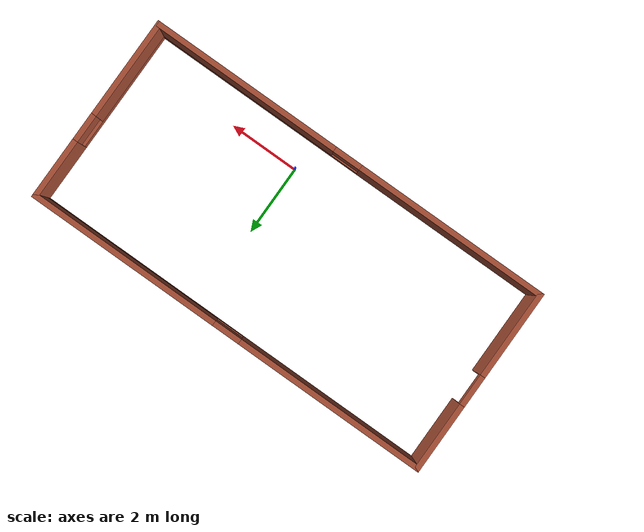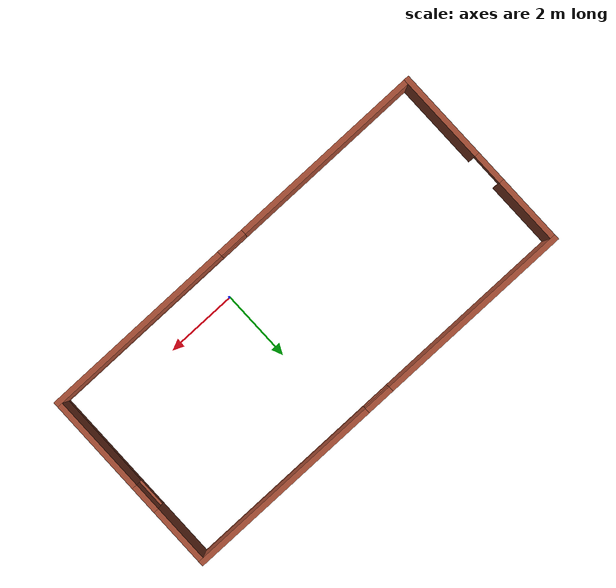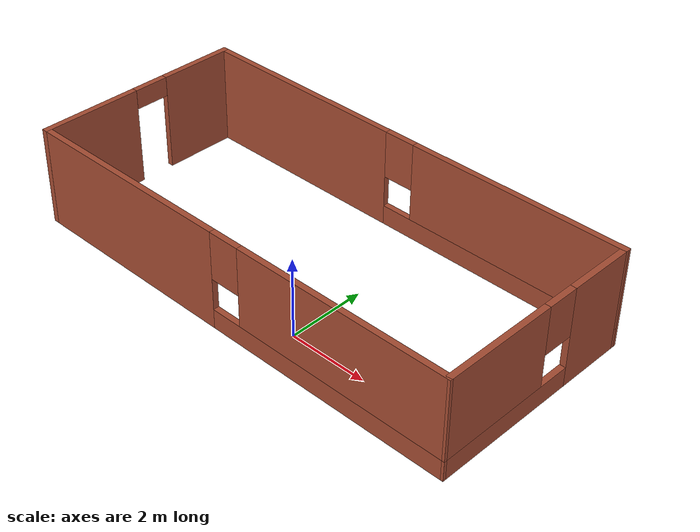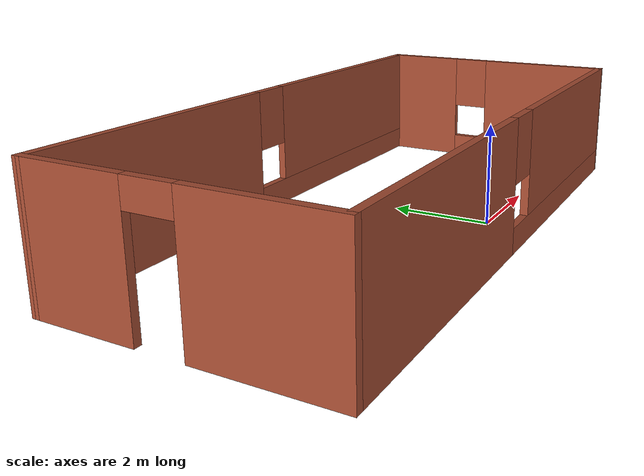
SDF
<?xml version='1.0'?>
<sdf version='1.6'>
  <model name='MyBuilding'>
    <pose frame=''>-1.01485 1.76487 0 0 -0 0</pose>
    <link name='Wall_1'>
      <pose frame=''>-0.000147 2.66513 0 0 -0 -0.001691</pose>
      <visual name='Wall_1_Visual_0'>
        <pose frame=''>-3.20401 0 1.25 0 -0 0</pose>
        <geometry>
          <box>
            <size>5.57199 0.15 2.5</size>
          </box>
        </geometry>
        <material>
          <script>
            <uri>file://media/materials/scripts/gazebo.material</uri>
            <name>Gazebo/Bricks</name>
          </script>
          <ambient>1 1 1 1</ambient>
        </material>
        <meta>
          <layer>0</layer>
        </meta>
      </visual>
      <collision name='Wall_1_Collision_0'>
        <geometry>
          <box>
            <size>5.57199 0.15 2.5</size>
          </box>
        </geometry>
        <pose frame=''>-3.20401 0 1.25 0 -0 0</pose>
      </collision>
      <visual name='Wall_1_Visual_1'>
        <pose frame=''>2.786 0 0.25 0 -0 0</pose>
        <geometry>
          <box>
            <size>6.40802 0.15 0.5</size>
          </box>
        </geometry>
        <material>
          <script>
            <uri>file://media/materials/scripts/gazebo.material</uri>
            <name>Gazebo/Bricks</name>
          </script>
          <ambient>1 1 1 1</ambient>
        </material>
        <meta>
          <layer>0</layer>
        </meta>
      </visual>
      <collision name='Wall_1_Collision_1'>
        <geometry>
          <box>
            <size>6.40802 0.15 0.5</size>
          </box>
        </geometry>
        <pose frame=''>2.786 0 0.25 0 -0 0</pose>
      </collision>
      <visual name='Wall_1_Visual_2'>
        <pose frame=''>3.186 0 1.5 0 -0 0</pose>
        <geometry>
          <box>
            <size>5.60802 0.15 2</size>
          </box>
        </geometry>
        <material>
          <script>
            <uri>file://media/materials/scripts/gazebo.material</uri>
            <name>Gazebo/Bricks</name>
          </script>
          <ambient>1 1 1 1</ambient>
        </material>
        <meta>
          <layer>0</layer>
        </meta>
      </visual>
      <collision name='Wall_1_Collision_2'>
        <geometry>
          <box>
            <size>5.60802 0.15 2</size>
          </box>
        </geometry>
        <pose frame=''>3.186 0 1.5 0 -0 0</pose>
      </collision>
      <visual name='Wall_1_Visual_3'>
        <pose frame=''>-0.018015 0 1.9 0 -0 0</pose>
        <geometry>
          <box>
            <size>0.8 0.15 1.2</size>
          </box>
        </geometry>
        <material>
          <script>
            <uri>file://media/materials/scripts/gazebo.material</uri>
            <name>Gazebo/Bricks</name>
          </script>
          <ambient>1 1 1 1</ambient>
        </material>
        <meta>
          <layer>0</layer>
        </meta>
      </visual>
      <collision name='Wall_1_Collision_3'>
        <geometry>
          <box>
            <size>0.8 0.15 1.2</size>
          </box>
        </geometry>
        <pose frame=''>-0.018015 0 1.9 0 -0 0</pose>
      </collision>
    </link>
    <link name='Wall_3'>
      <pose frame=''>-5.91515 0.000129 0 0 -0 -1.5708</pose>
      <visual name='Wall_3_Visual_0'>
        <pose frame=''>-1.74357 0 1.25 0 -0 0</pose>
        <geometry>
          <box>
            <size>2.013 0.15 2.5</size>
          </box>
        </geometry>
        <material>
          <script>
            <uri>file://media/materials/scripts/gazebo.material</uri>
            <name>Gazebo/Bricks</name>
          </script>
          <ambient>1 1 1 1</ambient>
        </material>
        <meta>
          <layer>0</layer>
        </meta>
      </visual>
      <collision name='Wall_3_Collision_0'>
        <geometry>
          <box>
            <size>2.013 0.15 2.5</size>
          </box>
        </geometry>
        <pose frame=''>-1.74357 0 1.25 0 -0 0</pose>
      </collision>
      <visual name='Wall_3_Visual_1'>
        <pose frame=''>1.4565 0 1.25 0 -0 0</pose>
        <geometry>
          <box>
            <size>2.58715 0.15 2.5</size>
          </box>
        </geometry>
        <material>
          <script>
            <uri>file://media/materials/scripts/gazebo.material</uri>
            <name>Gazebo/Bricks</name>
          </script>
          <ambient>1 1 1 1</ambient>
        </material>
        <meta>
          <layer>0</layer>
        </meta>
      </visual>
      <collision name='Wall_3_Collision_1'>
        <geometry>
          <box>
            <size>2.58715 0.15 2.5</size>
          </box>
        </geometry>
        <pose frame=''>1.4565 0 1.25 0 -0 0</pose>
      </collision>
      <visual name='Wall_3_Visual_2'>
        <pose frame=''>-0.287073 0 2.25 0 -0 0</pose>
        <geometry>
          <box>
            <size>0.9 0.15 0.5</size>
          </box>
        </geometry>
        <material>
          <script>
            <uri>file://media/materials/scripts/gazebo.material</uri>
            <name>Gazebo/Bricks</name>
          </script>
          <ambient>1 1 1 1</ambient>
        </material>
        <meta>
          <layer>0</layer>
        </meta>
      </visual>
      <collision name='Wall_3_Collision_2'>
        <geometry>
          <box>
            <size>0.9 0.15 0.5</size>
          </box>
        </geometry>
        <pose frame=''>-0.287073 0 2.25 0 -0 0</pose>
      </collision>
    </link>
    <link name='Wall_6'>
      <pose frame=''>-0.015147 -2.67487 0 0 -0 0</pose>
      <visual name='Wall_6_Visual_0'>
        <pose frame=''>-3.16055 0 1.25 0 -0 0</pose>
        <geometry>
          <box>
            <size>5.62891 0.15 2.5</size>
          </box>
        </geometry>
        <material>
          <script>
            <uri>file://media/materials/scripts/gazebo.material</uri>
            <name>Gazebo/Bricks</name>
          </script>
          <ambient>1 1 1 1</ambient>
        </material>
        <meta>
          <layer>0</layer>
        </meta>
      </visual>
      <collision name='Wall_6_Collision_0'>
        <geometry>
          <box>
            <size>5.62891 0.15 2.5</size>
          </box>
        </geometry>
        <pose frame=''>-3.16055 0 1.25 0 -0 0</pose>
      </collision>
      <visual name='Wall_6_Visual_1'>
        <pose frame=''>2.81445 0 0.25 0 -0 0</pose>
        <geometry>
          <box>
            <size>6.32109 0.15 0.5</size>
          </box>
        </geometry>
        <material>
          <script>
            <uri>file://media/materials/scripts/gazebo.material</uri>
            <name>Gazebo/Bricks</name>
          </script>
          <ambient>1 1 1 1</ambient>
        </material>
        <meta>
          <layer>0</layer>
        </meta>
      </visual>
      <collision name='Wall_6_Collision_1'>
        <geometry>
          <box>
            <size>6.32109 0.15 0.5</size>
          </box>
        </geometry>
        <pose frame=''>2.81445 0 0.25 0 -0 0</pose>
      </collision>
      <visual name='Wall_6_Visual_2'>
        <pose frame=''>3.21445 0 1.5 0 -0 0</pose>
        <geometry>
          <box>
            <size>5.52109 0.15 2</size>
          </box>
        </geometry>
        <material>
          <script>
            <uri>file://media/materials/scripts/gazebo.material</uri>
            <name>Gazebo/Bricks</name>
          </script>
          <ambient>1 1 1 1</ambient>
        </material>
        <meta>
          <layer>0</layer>
        </meta>
      </visual>
      <collision name='Wall_6_Collision_2'>
        <geometry>
          <box>
            <size>5.52109 0.15 2</size>
          </box>
        </geometry>
        <pose frame=''>3.21445 0 1.5 0 -0 0</pose>
      </collision>
      <visual name='Wall_6_Visual_3'>
        <pose frame=''>0.053909 0 1.9 0 -0 0</pose>
        <geometry>
          <box>
            <size>0.8 0.15 1.2</size>
          </box>
        </geometry>
        <material>
          <script>
            <uri>file://media/materials/scripts/gazebo.material</uri>
            <name>Gazebo/Bricks</name>
          </script>
          <ambient>1 1 1 1</ambient>
        </material>
        <meta>
          <layer>0</layer>
        </meta>
      </visual>
      <collision name='Wall_6_Collision_3'>
        <geometry>
          <box>
            <size>0.8 0.15 1.2</size>
          </box>
        </geometry>
        <pose frame=''>0.053909 0 1.9 0 -0 0</pose>
      </collision>
    </link>
    <link name='Wall_8'>
      <pose frame=''>5.89985 -0.009871 0 0 -0 -1.57642</pose>
      <visual name='Wall_8_Visual_0'>
        <pose frame=''>-1.84319 0 1.25 0 -0 0</pose>
        <geometry>
          <box>
            <size>1.79363 0.15 2.5</size>
          </box>
        </geometry>
        <material>
          <script>
            <uri>file://media/materials/scripts/gazebo.material</uri>
            <name>Gazebo/Bricks</name>
          </script>
          <ambient>1 1 1 1</ambient>
        </material>
        <meta>
          <layer>0</layer>
        </meta>
      </visual>
      <collision name='Wall_8_Collision_0'>
        <geometry>
          <box>
            <size>1.79363 0.15 2.5</size>
          </box>
        </geometry>
        <pose frame=''>-1.84319 0 1.25 0 -0 0</pose>
      </collision>
      <visual name='Wall_8_Visual_1'>
        <pose frame=''>0.896814 0 0.25 0 -0 0</pose>
        <geometry>
          <box>
            <size>3.68638 0.15 0.5</size>
          </box>
        </geometry>
        <material>
          <script>
            <uri>file://media/materials/scripts/gazebo.material</uri>
            <name>Gazebo/Bricks</name>
          </script>
          <ambient>1 1 1 1</ambient>
        </material>
        <meta>
          <layer>0</layer>
        </meta>
      </visual>
      <collision name='Wall_8_Collision_1'>
        <geometry>
          <box>
            <size>3.68638 0.15 0.5</size>
          </box>
        </geometry>
        <pose frame=''>0.896814 0 0.25 0 -0 0</pose>
      </collision>
      <visual name='Wall_8_Visual_2'>
        <pose frame=''>1.29681 0 1.5 0 -0 0</pose>
        <geometry>
          <box>
            <size>2.88638 0.15 2</size>
          </box>
        </geometry>
        <material>
          <script>
            <uri>file://media/materials/scripts/gazebo.material</uri>
            <name>Gazebo/Bricks</name>
          </script>
          <ambient>1 1 1 1</ambient>
        </material>
        <meta>
          <layer>0</layer>
        </meta>
      </visual>
      <collision name='Wall_8_Collision_2'>
        <geometry>
          <box>
            <size>2.88638 0.15 2</size>
          </box>
        </geometry>
        <pose frame=''>1.29681 0 1.5 0 -0 0</pose>
      </collision>
      <visual name='Wall_8_Visual_3'>
        <pose frame=''>-0.546377 0 1.9 0 -0 0</pose>
        <geometry>
          <box>
            <size>0.8 0.15 1.2</size>
          </box>
        </geometry>
        <material>
          <script>
            <uri>file://media/materials/scripts/gazebo.material</uri>
            <name>Gazebo/Bricks</name>
          </script>
          <ambient>1 1 1 1</ambient>
        </material>
        <meta>
          <layer>0</layer>
        </meta>
      </visual>
      <collision name='Wall_8_Collision_3'>
        <geometry>
          <box>
            <size>0.8 0.15 1.2</size>
          </box>
        </geometry>
        <pose frame=''>-0.546377 0 1.9 0 -0 0</pose>
      </collision>
    </link>
    <static>1</static>

  </model>
</sdf>
